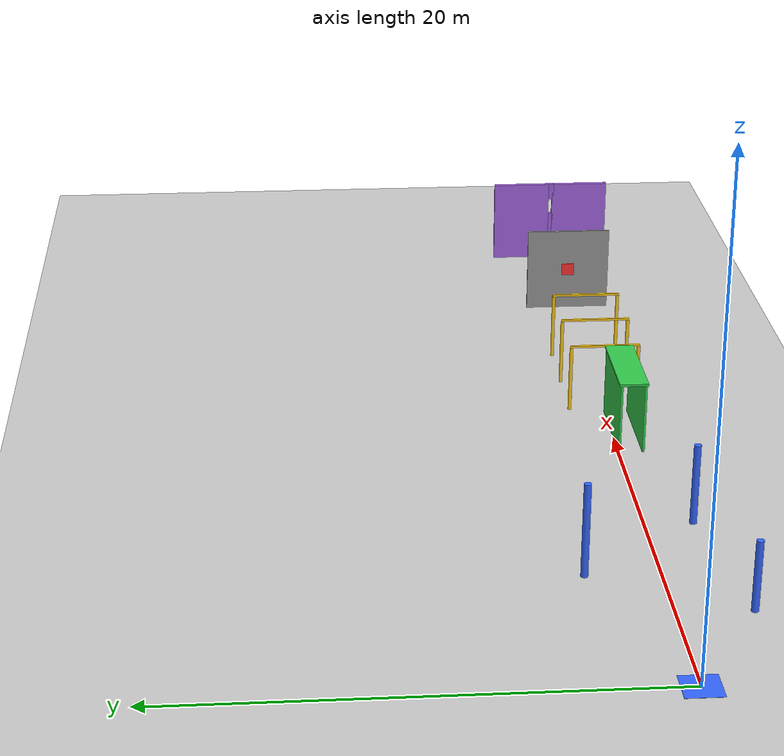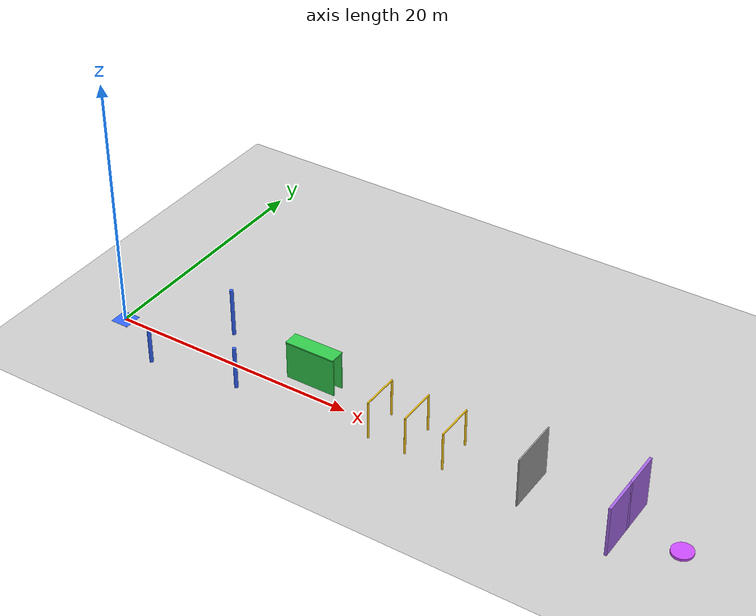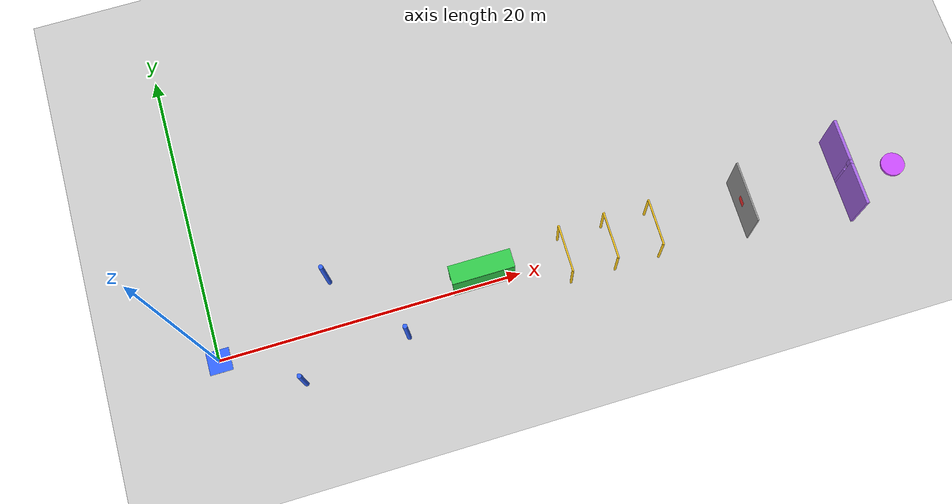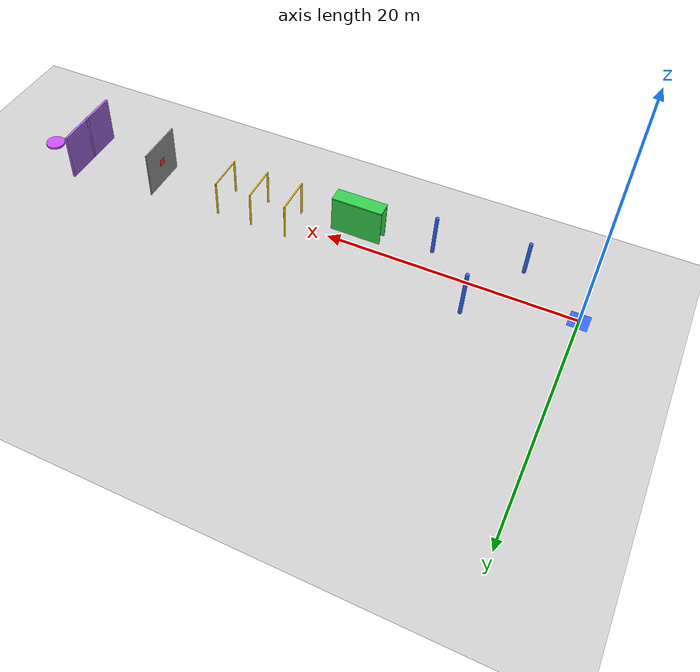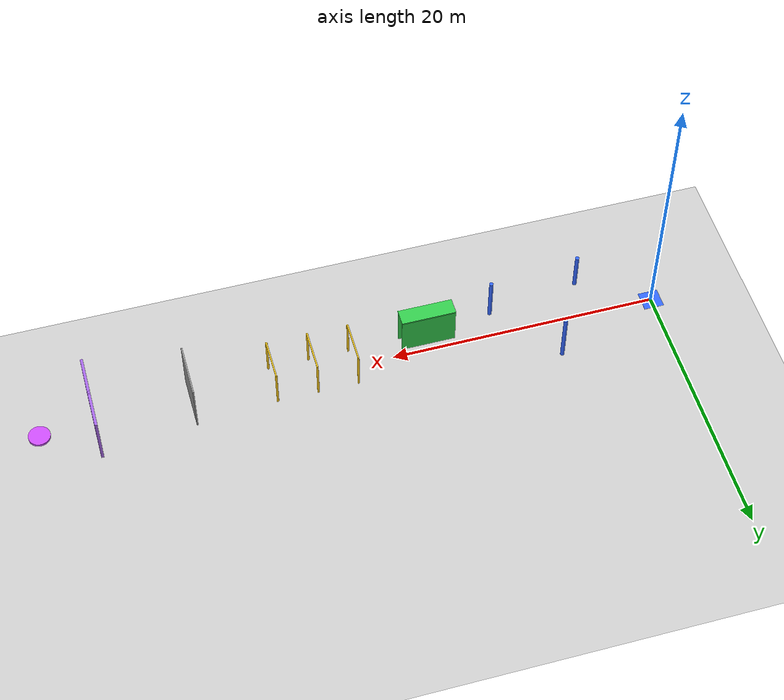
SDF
<?xml version="1.0" ?>
<sdf version="1.6">
  <world name="morph_course_world">

    <physics type="ode">
      <max_step_size>0.001</max_step_size>
      <real_time_factor>1.0</real_time_factor>
      <real_time_update_rate>1000</real_time_update_rate>
      <ode>
        <solver>
          <type>quick</type>
          <iters>100</iters>
        </solver>
      </ode>
    </physics>

    <include><uri>model://sun</uri></include>
    <include><uri>model://ground_plane</uri></include>

    <plugin name="gazebo_ros_state" filename="libgazebo_ros_state.so">
      <ros><namespace>/</namespace></ros>
      <update_rate>100.0</update_rate>
    </plugin>

    <!-- Takeoff pad marker (BLUE square on ground at origin) — visual only, no collision -->
    <model name="takeoff_pad">
      <static>true</static>
      <pose>0 0 0.005 0 0 0</pose>
      <link name="pad">
        <visual name="v">
          <geometry><box><size>1.5 1.5 0.01</size></box></geometry>
          <material><ambient>0.2 0.4 1.0 1</ambient><diffuse>0.2 0.4 1.0 1</diffuse></material>
        </visual>
      </link>
    </model>

    <!-- ═══ ZONE 1 — X-CONFIG OPEN WAYPOINT RUN ═══
         4 pylons at varying heights in a 15×15m area -->
    <model name="pylon_1">
      <static>true</static>
      <pose>5 -3 1.5 0 0 0</pose>
      <link name="p">
        <visual name="v">
          <geometry><cylinder><radius>0.15</radius><length>3.0</length></cylinder></geometry>
          <material><ambient>0.2 0.4 1.0 1</ambient><diffuse>0.2 0.4 1.0 1</diffuse></material>
        </visual>
        <collision name="c">
          <geometry><cylinder><radius>0.15</radius><length>3.0</length></cylinder></geometry>
        </collision>
      </link>
    </model>
    <model name="pylon_2">
      <static>true</static>
      <pose>8 3 2.0 0 0 0</pose>
      <link name="p">
        <visual name="v">
          <geometry><cylinder><radius>0.15</radius><length>4.0</length></cylinder></geometry>
          <material><ambient>0.2 0.4 1.0 1</ambient><diffuse>0.2 0.4 1.0 1</diffuse></material>
        </visual>
        <collision name="c">
          <geometry><cylinder><radius>0.15</radius><length>4.0</length></cylinder></geometry>
        </collision>
      </link>
    </model>
    <model name="pylon_3">
      <static>true</static>
      <pose>12 -2 1.75 0 0 0</pose>
      <link name="p">
        <visual name="v">
          <geometry><cylinder><radius>0.15</radius><length>3.5</length></cylinder></geometry>
          <material><ambient>0.2 0.4 1.0 1</ambient><diffuse>0.2 0.4 1.0 1</diffuse></material>
        </visual>
        <collision name="c">
          <geometry><cylinder><radius>0.15</radius><length>3.5</length></cylinder></geometry>
        </collision>
      </link>
    </model>

    <!-- ═══ ZONE 2 — O-CONFIG TUNNEL (GREEN) ═══
         Narrow round tunnel: 4m long, 0.7m wide passage
         X-config bounding (~0.64m wide) barely fits, O-config (~0.32m) clears easily -->
    <model name="tunnel_wall_left">
      <static>true</static>
      <pose>17.5 -0.5 3.0 0 0 0</pose>
      <link name="w">
        <visual name="v">
          <geometry><box><size>4.0 0.1 3.0</size></box></geometry>
          <material><ambient>0.2 0.8 0.3 1</ambient><diffuse>0.2 0.8 0.3 1</diffuse></material>
        </visual>
        <collision name="c">
          <geometry><box><size>4.0 0.1 3.0</size></box></geometry>
        </collision>
      </link>
    </model>
    <model name="tunnel_wall_right">
      <static>true</static>
      <pose>17.5 0.5 3.0 0 0 0</pose>
      <link name="w">
        <visual name="v">
          <geometry><box><size>4.0 0.1 3.0</size></box></geometry>
          <material><ambient>0.2 0.8 0.3 1</ambient><diffuse>0.2 0.8 0.3 1</diffuse></material>
        </visual>
        <collision name="c">
          <geometry><box><size>4.0 0.1 3.0</size></box></geometry>
        </collision>
      </link>
    </model>
    <model name="tunnel_ceiling">
      <static>true</static>
      <pose>17.5 0 4.55 0 0 0</pose>
      <link name="w">
        <visual name="v">
          <geometry><box><size>4.0 1.2 0.1</size></box></geometry>
          <material><ambient>0.2 0.8 0.3 1</ambient><diffuse>0.2 0.8 0.3 1</diffuse></material>
        </visual>
        <collision name="c">
          <geometry><box><size>4.0 1.2 0.1</size></box></geometry>
        </collision>
      </link>
    </model>

    <!-- ═══ ZONE 3 — Y-CONFIG SLALOM (YELLOW) ═══
         4 gates in a line, 3m apart, forcing forward cruise -->
    <model name="gate_1_left">
      <static>true</static>
      <pose>23 -1.5 1.5 0 0 0</pose>
      <link name="p">
        <visual name="v"><geometry><cylinder><radius>0.08</radius><length>3.0</length></cylinder></geometry>
          <material><ambient>1.0 0.8 0.1 1</ambient><diffuse>1.0 0.8 0.1 1</diffuse></material></visual>
        <collision name="c"><geometry><cylinder><radius>0.08</radius><length>3.0</length></cylinder></geometry></collision>
      </link>
    </model>
    <model name="gate_1_right">
      <static>true</static>
      <pose>23 1.5 1.5 0 0 0</pose>
      <link name="p">
        <visual name="v"><geometry><cylinder><radius>0.08</radius><length>3.0</length></cylinder></geometry>
          <material><ambient>1.0 0.8 0.1 1</ambient><diffuse>1.0 0.8 0.1 1</diffuse></material></visual>
        <collision name="c"><geometry><cylinder><radius>0.08</radius><length>3.0</length></cylinder></geometry></collision>
      </link>
    </model>
    <model name="gate_1_top">
      <static>true</static>
      <pose>23 0 3.05 0 0 0</pose>
      <link name="b">
        <visual name="v"><geometry><box><size>0.1 3.1 0.1</size></box></geometry>
          <material><ambient>1.0 0.8 0.1 1</ambient><diffuse>1.0 0.8 0.1 1</diffuse></material></visual>
      </link>
    </model>

    <model name="gate_2_left">
      <static>true</static>
      <pose>26 -1.5 1.5 0 0 0</pose>
      <link name="p"><visual name="v"><geometry><cylinder><radius>0.08</radius><length>3.0</length></cylinder></geometry>
        <material><ambient>1.0 0.8 0.1 1</ambient><diffuse>1.0 0.8 0.1 1</diffuse></material></visual>
        <collision name="c"><geometry><cylinder><radius>0.08</radius><length>3.0</length></cylinder></geometry></collision></link>
    </model>
    <model name="gate_2_right">
      <static>true</static>
      <pose>26 1.5 1.5 0 0 0</pose>
      <link name="p"><visual name="v"><geometry><cylinder><radius>0.08</radius><length>3.0</length></cylinder></geometry>
        <material><ambient>1.0 0.8 0.1 1</ambient><diffuse>1.0 0.8 0.1 1</diffuse></material></visual>
        <collision name="c"><geometry><cylinder><radius>0.08</radius><length>3.0</length></cylinder></geometry></collision></link>
    </model>
    <model name="gate_2_top">
      <static>true</static>
      <pose>26 0 3.05 0 0 0</pose>
      <link name="b"><visual name="v"><geometry><box><size>0.1 3.1 0.1</size></box></geometry>
        <material><ambient>1.0 0.8 0.1 1</ambient><diffuse>1.0 0.8 0.1 1</diffuse></material></visual></link>
    </model>

    <model name="gate_3_left">
      <static>true</static>
      <pose>29 -1.5 1.5 0 0 0</pose>
      <link name="p"><visual name="v"><geometry><cylinder><radius>0.08</radius><length>3.0</length></cylinder></geometry>
        <material><ambient>1.0 0.8 0.1 1</ambient><diffuse>1.0 0.8 0.1 1</diffuse></material></visual>
        <collision name="c"><geometry><cylinder><radius>0.08</radius><length>3.0</length></cylinder></geometry></collision></link>
    </model>
    <model name="gate_3_right">
      <static>true</static>
      <pose>29 1.5 1.5 0 0 0</pose>
      <link name="p"><visual name="v"><geometry><cylinder><radius>0.08</radius><length>3.0</length></cylinder></geometry>
        <material><ambient>1.0 0.8 0.1 1</ambient><diffuse>1.0 0.8 0.1 1</diffuse></material></visual>
        <collision name="c"><geometry><cylinder><radius>0.08</radius><length>3.0</length></cylinder></geometry></collision></link>
    </model>
    <model name="gate_3_top">
      <static>true</static>
      <pose>29 0 3.05 0 0 0</pose>
      <link name="b"><visual name="v"><geometry><box><size>0.1 3.1 0.1</size></box></geometry>
        <material><ambient>1.0 0.8 0.1 1</ambient><diffuse>1.0 0.8 0.1 1</diffuse></material></visual></link>
    </model>

    <!-- ═══ ZONE 4 — T-CONFIG WALL INSPECTION (RED) ═══
         Vertical wall with colored target patch for sensor approach -->
    <model name="inspection_wall">
      <static>true</static>
      <pose>35 0 2.0 0 0 0</pose>
      <link name="w">
        <visual name="v">
          <geometry><box><size>0.1 4.0 4.0</size></box></geometry>
          <material><ambient>0.6 0.6 0.6 1</ambient><diffuse>0.6 0.6 0.6 1</diffuse></material>
        </visual>
        <collision name="c">
          <geometry><box><size>0.1 4.0 4.0</size></box></geometry>
        </collision>
      </link>
    </model>
    <!-- Target patch on the wall -->
    <model name="inspection_target">
      <static>true</static>
      <pose>34.93 0 2.0 0 0 0</pose>
      <link name="t">
        <visual name="v">
          <geometry><box><size>0.02 0.6 0.6</size></box></geometry>
          <material><ambient>1.0 0.2 0.2 1</ambient><diffuse>1.0 0.2 0.2 1</diffuse></material>
        </visual>
      </link>
    </model>

    <model name="slot_wall_left">
      <static>true</static>
      <pose>42 -1.5 2.0 0 0 0</pose>
      <link name="w">
        <visual name="v">
          <geometry><box><size>0.2 2.825 4.0</size></box></geometry>
          <material><ambient>0.65 0.4 0.9 1</ambient><diffuse>0.65 0.4 0.9 1</diffuse></material>
        </visual>
        <collision name="c"><geometry><box><size>0.2 2.825 4.0</size></box></geometry></collision>
      </link>
    </model>
    <model name="slot_wall_right">
      <static>true</static>
      <pose>42 1.5 2.0 0 0 0</pose>
      <link name="w">
        <visual name="v">
          <geometry><box><size>0.2 2.825 4.0</size></box></geometry>
          <material><ambient>0.65 0.4 0.9 1</ambient><diffuse>0.65 0.4 0.9 1</diffuse></material>
        </visual>
        <collision name="c"><geometry><box><size>0.2 2.825 4.0</size></box></geometry></collision>
      </link>
    </model>
    <!-- Top beam of the slot (closes the top) -->
    <model name="slot_top_beam">
      <static>true</static>
      <pose>42 0 3.6 0 0 0</pose>
      <link name="w">
        <visual name="v">
          <geometry><box><size>0.2 0.35 0.8</size></box></geometry>
          <material><ambient>0.65 0.4 0.9 1</ambient><diffuse>0.65 0.4 0.9 1</diffuse></material>
        </visual>
        <collision name="c"><geometry><box><size>0.2 0.35 0.8</size></box></geometry></collision>
      </link>
    </model>
    <!-- Bottom beam of the slot (closes the bottom — forces slot entry height) -->
    <model name="slot_bottom_beam">
      <static>true</static>
      <pose>42 0 1.2 0 0 0</pose>
      <link name="w">
        <visual name="v">
          <geometry><box><size>0.2 0.35 2.4</size></box></geometry>
          <material><ambient>0.65 0.4 0.9 1</ambient><diffuse>0.65 0.4 0.9 1</diffuse></material>
        </visual>
        <collision name="c"><geometry><box><size>0.2 0.35 2.4</size></box></geometry></collision>
      </link>
    </model>

    <!-- Landing pad behind the slot -->
    <model name="landing_pad">
      <static>true</static>
      <pose>46 0 0.1 0 0 0</pose>
      <link name="p">
        <visual name="v">
          <geometry><cylinder><radius>0.8</radius><length>0.2</length></cylinder></geometry>
          <material><ambient>0.8 0.3 1.0 1</ambient><diffuse>0.8 0.3 1.0 1</diffuse></material>
        </visual>
        <collision name="c">
          <geometry><cylinder><radius>0.8</radius><length>0.2</length></cylinder></geometry>
        </collision>
      </link>
    </model>

  </world>
</sdf>
